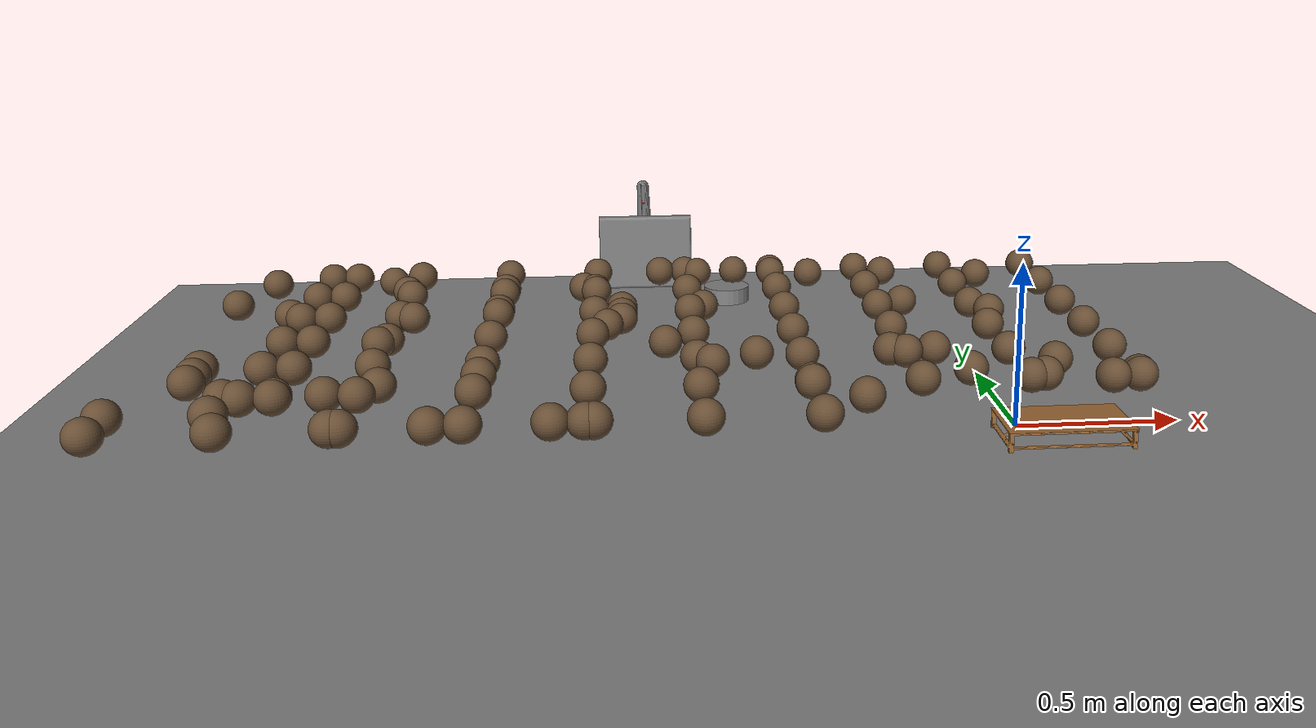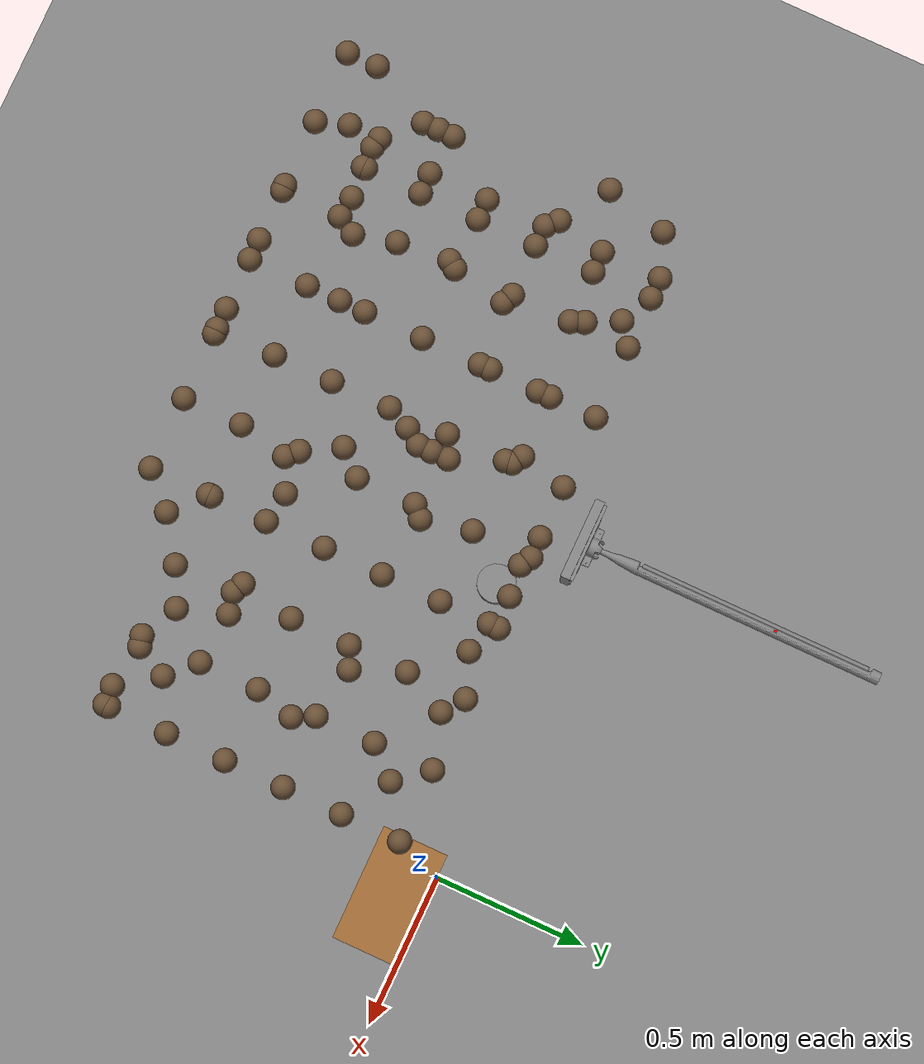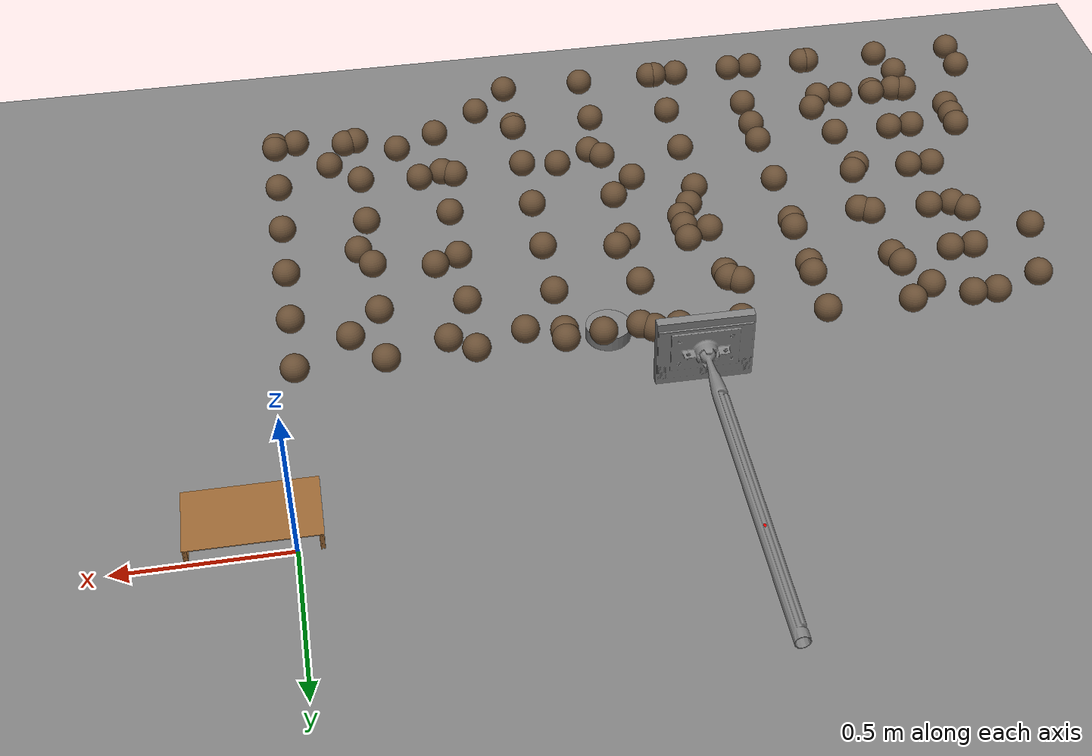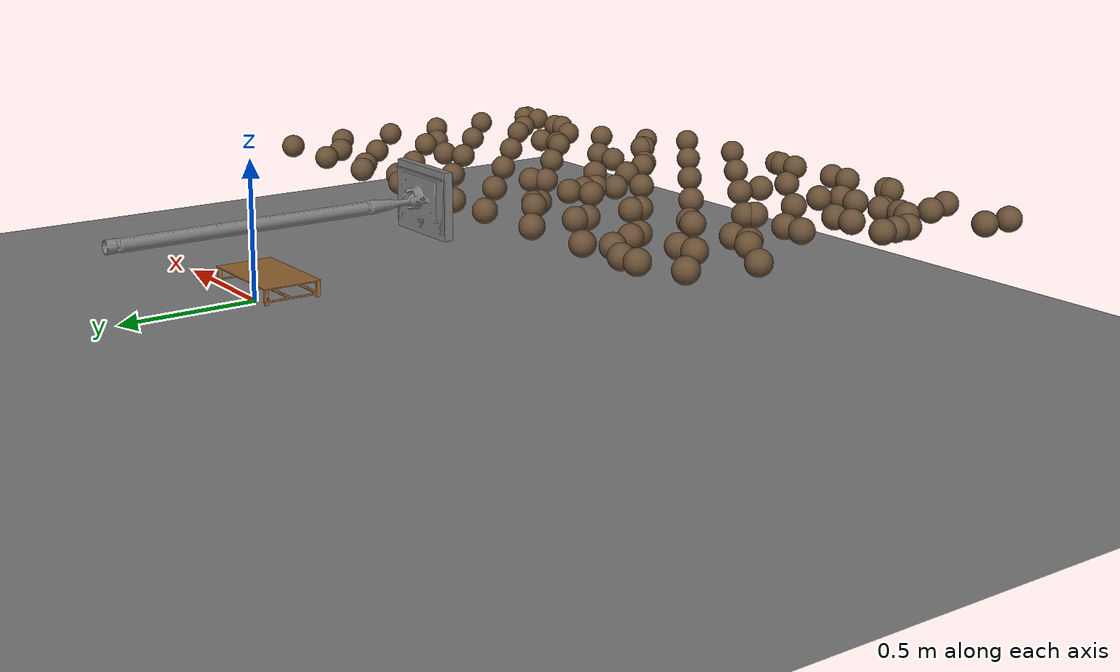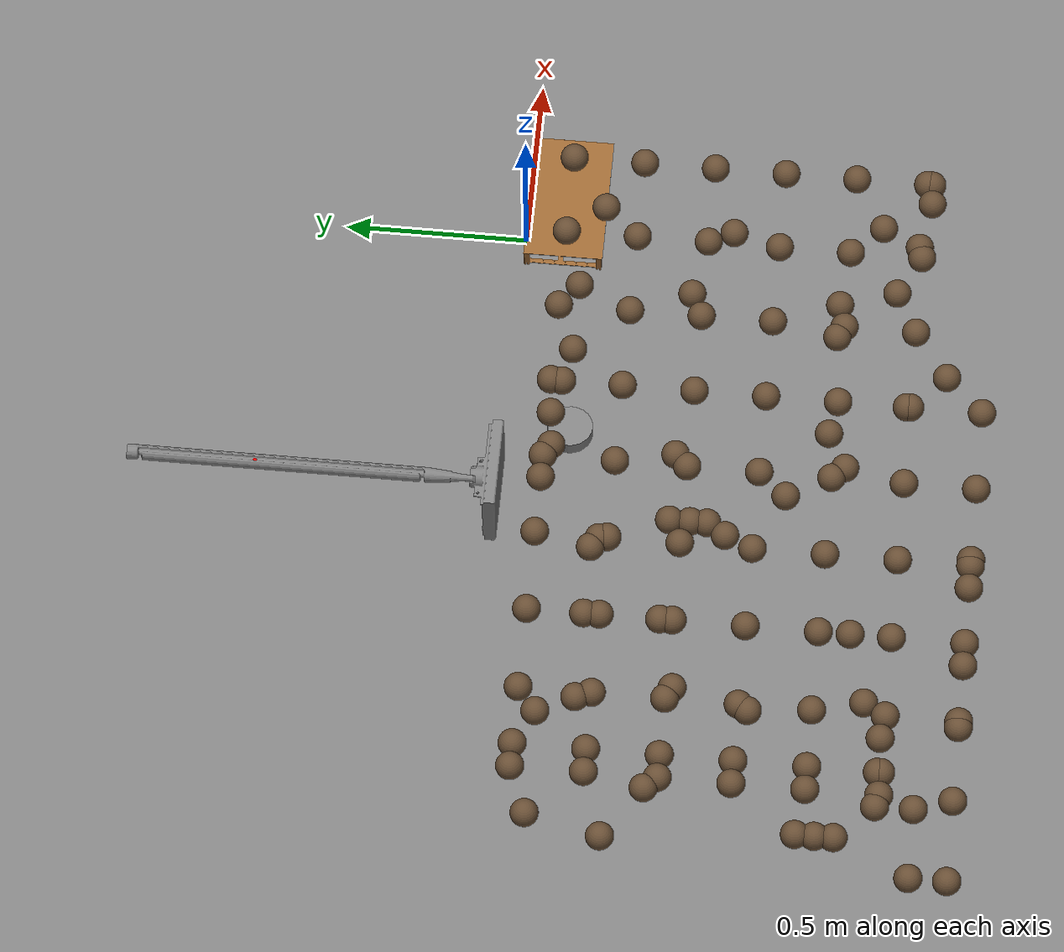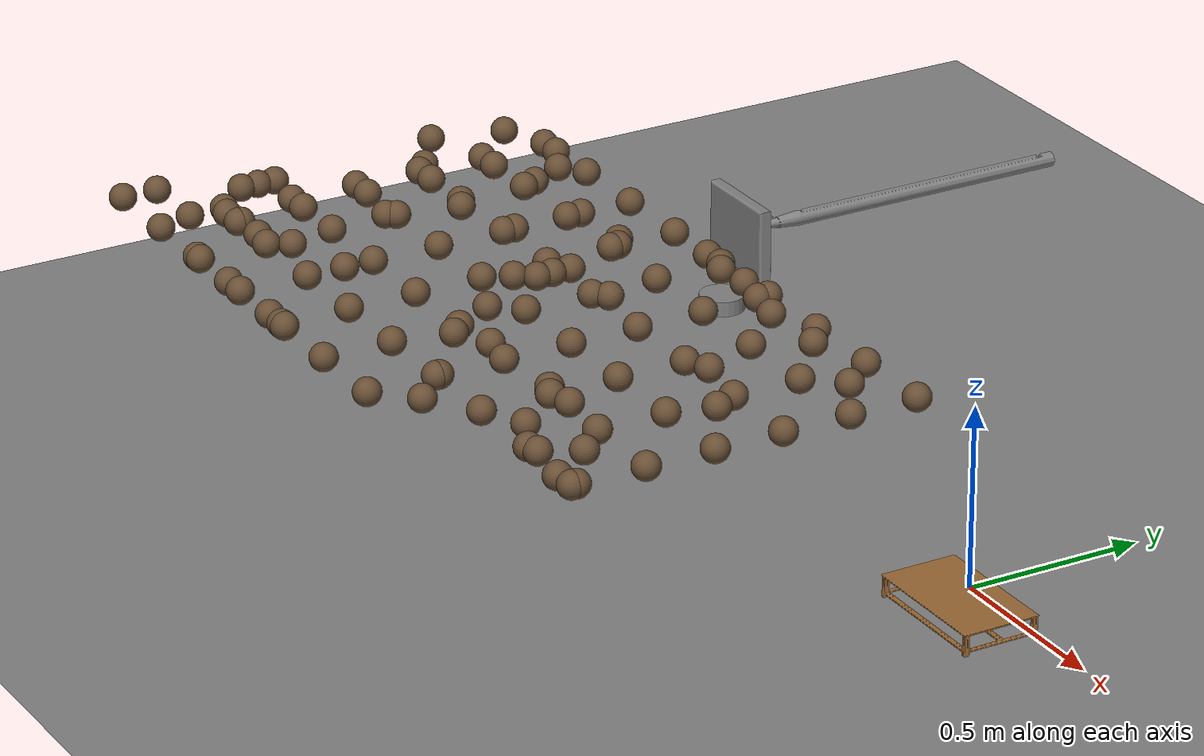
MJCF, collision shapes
<?xml version="1.0" encoding="UTF-8"?>
<mujoco model="ur5e_with_mop_and_dust">
  <compiler angle="radian" meshdir="assets" autolimits="true"/>
  <option integrator="implicitfast" timestep="0.01" viscosity="0.01"/>

  <!-- ================= DEFAULT SETTINGS ================= -->
  <default>
    <default class="ur5e">
      <default class="visual">
        <geom type="mesh" contype="0" conaffinity="0" group="2"/>
      </default>
      <default class="collision">
        <geom type="capsule" group="3"/>
        <default class="eef_collision">
          <geom type="cylinder"/>
        </default>
      </default>
      <joint axis="0 1 0" range="-6.28319 6.28319"/>
      <default class="joint_limited">
        <joint range="-3.1415 3.1415"/>
      </default>
      <default class="position">
        <position ctrlrange="-6.2831 6.2831" kp="2000" kv="100" forcerange="-150 150"/>
        <default class="position_limited">
          <position ctrlrange="-3.1415 3.1415"/>
        </default>
        <default class="position_small">
          <position kp="500" kv="25" forcerange="-28 28"/>
        </default>
      </default>
    </default>
    <!-- Improved dust particle physics for MuJoCo 3.3.5 -->
    <default class="dust">
      <geom type="sphere" size="0.008" density="600" friction="0.8 0.1 0.05" condim="3"
            contype="1" conaffinity="1" group="1"
            solref="0.02 1.0" solimp="0.9 0.95 0.001"/>
    </default>
  </default>

  <!-- ================= MATERIALS + MESHES ================= -->
  <asset>
    <material name="black" rgba="0.033 0.033 0.033 1"/>
    <material name="jointgray" rgba="0.278 0.278 0.278 1"/>
    <material name="linkgray" rgba="0.82 0.82 0.82 1"/>
    <material name="urblue" rgba="0.49 0.678 0.8 1"/>
    <material name="table_material" rgba="0.6 0.4 0.2 1"/>
    <material name="dust_material" rgba="0.4 0.3 0.2 0.8"/>

    <!-- Robot meshes -->
    <mesh file="base_0.obj"/>
    <mesh file="base_1.obj"/>
    <mesh file="shoulder_0.obj"/>
    <mesh file="shoulder_1.obj"/>
    <mesh file="shoulder_2.obj"/>
    <mesh file="upperarm_0.obj"/>
    <mesh file="upperarm_1.obj"/>
    <mesh file="upperarm_2.obj"/>
    <mesh file="upperarm_3.obj"/>
    <mesh file="forearm_0.obj"/>
    <mesh file="forearm_1.obj"/>
    <mesh file="forearm_2.obj"/>
    <mesh file="forearm_3.obj"/>
    <mesh file="wrist1_0.obj"/>
    <mesh file="wrist1_1.obj"/>
    <mesh file="wrist1_2.obj"/>
    <mesh file="wrist2_0.obj"/>
    <mesh file="wrist2_1.obj"/>
    <mesh file="wrist2_2.obj"/>
    <mesh file="wrist3.obj"/>

    <!-- Table and tool meshes -->
    <mesh file="test.stl" scale="0.28 0.29 0.1" name="table"/>
    <mesh name="base_mesh" file="mop_base.obj" scale="0.002 0.002 0.002"/>
    <mesh name="handle_mesh" file="mop_handle.obj" scale="0.002 0.002 0.002"/>
    <mesh name="dust_ball_mesh" file="simple_small_ball.stl" scale="0.005 0.005 0.005"/>
  </asset>

  <!-- ================= WORLD OBJECTS ================= -->
  <worldbody>
    <!-- Ground with proper contact properties -->
    <geom name="ground" type="plane" size="3 3 0.1" rgba="0.5 0.5 0.5 1" pos="0 0 0"
          solref="0.02 1.0" solimp="0.9 0.95 0.001" friction="0.9 0.1 0.05"/>

    <!-- Table positioned as base platform -->
    <body name="table" pos="0.3 0 0">
      <inertial mass="50" pos="0 0 0.05" diaginertia="10 10 5"/>
      <geom name="table_visual" type="mesh" mesh="table" material="table_material" class="visual"/>
      <geom name="table_collision" type="mesh" mesh="table"
            material="table_material" group="0" contype="1" conaffinity="1"
            solref="0.02 1.0" solimp="0.9 0.95 0.001" friction="0.7 0.1 0.05"/>
    </body>

    <!-- UR5e Robot mounted ON the table surface -->
    <body name="base" pos="-0.875 -0.2 0.5" quat="1 0 0 1" childclass="ur5e">
      <inertial mass="4" pos="0 0 0" diaginertia="0.0044 0.0044 0.0072"/>
      <geom mesh="base_0" material="black" class="visual"/>
      <geom mesh="base_1" material="jointgray" class="visual"/>
      <!-- Base collision geometry to sit on table -->
      <geom name="base_collision" type="cylinder" size="0.06 0.02" pos="0 0 -0.01"
            contype="1" conaffinity="1" group="3" friction="0.8 0.1 0.05"/>

      <body name="shoulder_link" pos="0 0 0.163">
        <inertial mass="3.7" pos="0 0 0" diaginertia="0.0102 0.0102 0.0066"/>
        <joint name="shoulder_pan" axis="0 0 1"/>
        <geom mesh="shoulder_0" material="urblue" class="visual"/>
        <geom mesh="shoulder_1" material="black" class="visual"/>
        <geom mesh="shoulder_2" material="jointgray" class="visual"/>

        <body name="upper_arm_link" pos="0 0.138 0" quat="1 0 1 0">
          <inertial mass="8.39" pos="0 0 0.2125" diaginertia="0.133 0.133 0.015"/>
          <joint name="shoulder_lift"/>
          <geom mesh="upperarm_0" material="linkgray" class="visual"/>
          <geom mesh="upperarm_1" material="black" class="visual"/>
          <geom mesh="upperarm_2" material="jointgray" class="visual"/>
          <geom mesh="upperarm_3" material="urblue" class="visual"/>

          <body name="forearm_link" pos="0 -0.131 0.425">
            <inertial mass="2.27" pos="0 0 0.196" diaginertia="0.031 0.031 0.004"/>
            <joint name="elbow" class="joint_limited"/>
            <geom mesh="forearm_0" material="urblue" class="visual"/>
            <geom mesh="forearm_1" material="linkgray" class="visual"/>
            <geom mesh="forearm_2" material="black" class="visual"/>
            <geom mesh="forearm_3" material="jointgray" class="visual"/>

            <body name="wrist_1_link" pos="0 0 0.392" quat="1 0 1 0">
              <inertial mass="1.219" pos="0 0.127 0" diaginertia="0.0025 0.0025 0.0021"/>
              <joint name="wrist_1"/>
              <geom mesh="wrist1_0" material="black" class="visual"/>
              <geom mesh="wrist1_1" material="urblue" class="visual"/>
              <geom mesh="wrist1_2" material="jointgray" class="visual"/>

              <body name="wrist_2_link" pos="0 0.127 0">
                <inertial mass="1.219" pos="0 0 0.1" diaginertia="0.0025 0.0025 0.0021"/>
                <joint name="wrist_2" axis="0 0 1"/>
                <geom mesh="wrist2_0" material="black" class="visual"/>
                <geom mesh="wrist2_1" material="urblue" class="visual"/>
                <geom mesh="wrist2_2" material="jointgray" class="visual"/>

                <body name="wrist_3_link" pos="0 0 0.1">
                  <inertial mass="0.188" pos="0 0.077 0" diaginertia="0.00013 0.0001 0.0001"/>
                  <joint name="wrist_3"/>
                  <geom mesh="wrist3" material="linkgray" class="visual"/>
                  <site name="ee_site" pos="0 0.08 0" size="0.01" rgba="1 0 0 1"/>

                  <!-- Mop tool attachment -->
                  <body name="mop_mount" pos="0 0.08 0" quat="1 0 0 1">
                    <body name="mop_tool" pos="0 -0.6 0">
                      <inertial mass="0.5" pos="0 0 0" diaginertia="0.01 0.01 0.01"/>
                      <geom type="mesh" mesh="handle_mesh" density="500" friction="0.8 0.1 0.1"/>

                      <body name="mop_head_y">
                        <joint name="mop_socket_y" type="hinge" axis="0 1 0" damping="0.5"
                              limited="true" range="-1.57079633 1.57079633"/>

                        <body name="mop_head_x">
                          <joint name="mop_socket_x" type="hinge" axis="1 0 0" damping="0.5"
                                limited="true" range="-1.57079633 1.57079633"/>

                          <inertial mass="0.2" pos="0 -0.05 -0.1" diaginertia="0.005 0.005 0.005"/>
                          <geom type="mesh" mesh="base_mesh" density="500" friction="0.8 0.1 0.1"
                                pos="0 -0.05 -0.1"/>
                        </body>
                      </body>
                    </body>
                  </body>
                </body>
              </body>
            </body>
          </body>
        </body>
      </body>
    </body>

    <!-- Dust particles properly positioned on table surface around the robot -->
    <!-- Distributed in a cleaning area away from robot base -->
          <!-- Dust balls (stable with solver parameters) -->

      <!-- Dust particles - stable until mop pushes them -->
    <body name="dust_1" pos="-1.2340 -0.6502 0.5">
      <freejoint/>
      <inertial mass="0.03" diaginertia="2e-5 2e-5 2e-5" pos="0 0 0"/>
      <geom name="d1" type="mesh" mesh="dust_ball_mesh" material="dust_material" class="dust"/>
    </body>

    <body name="dust_2" pos="-0.5004 -0.503 0.5">
      <freejoint/>
      <inertial mass="0.03" diaginertia="2e-5 2e-5 2e-5" pos="0 0 0"/>
      <geom name="d2" type="mesh" mesh="dust_ball_mesh" material="dust_material" class="dust"/>
    </body>

    <body name="dust_3" pos="-2.1001 -1.0000 0.5">
      <freejoint/>
      <inertial mass="0.03" diaginertia="2e-5 2e-5 2e-5" pos="0 0 0"/>
      <geom name="d3" type="mesh" mesh="dust_ball_mesh" material="dust_material" class="dust"/>
    </body>

    <body name="dust_4" pos="-0.3000 -0.600 0.5">
      <freejoint/>
      <inertial mass="0.03" diaginertia="2e-5 2e-5 2e-5" pos="0 0 0"/>
      <geom name="d4" type="mesh" mesh="dust_ball_mesh" material="dust_material" class="dust"/>
    </body>

    <body name="dust_5" pos="-1.8000 -0.2000 0.5">
      <freejoint/>
      <inertial mass="0.03" diaginertia="2e-5 2e-5 2e-5" pos="0 0 0"/>
      <geom name="d5" type="mesh" mesh="dust_ball_mesh" material="dust_material" class="dust"/>
    </body>

    <body name="dust_6" pos="-2.0000 -0.5000 0.5">
      <freejoint/>
      <inertial mass="0.03" diaginertia="2e-5 2e-5 2e-5" pos="0 0 0"/>
      <geom name="d6" type="mesh" mesh="dust_ball_mesh" material="dust_material" class="dust"/>
    </body>

    <body name="dust_7" pos="-0.7000 -1.2000 0.5">
      <freejoint/>
      <inertial mass="0.03" diaginertia="2e-5 2e-5 2e-5" pos="0 0 0"/>
      <geom name="d7" type="mesh" mesh="dust_ball_mesh" material="dust_material" class="dust"/>
    </body>

    <body name="dust_8" pos="-1.5000 -0.500 0.5">
      <freejoint/>
      <inertial mass="0.03" diaginertia="2e-5 2e-5 2e-5" pos="0 0 0"/>
      <geom name="d8" type="mesh" mesh="dust_ball_mesh" material="dust_material" class="dust"/>
    </body>

    <body name="dust_9" pos="-1.7500 -0.3000 0.5">
      <freejoint/>
      <inertial mass="0.03" diaginertia="2e-5 2e-5 2e-5" pos="0 0 0"/>
      <geom name="d9" type="mesh" mesh="dust_ball_mesh" material="dust_material" class="dust"/>
    </body>

    <body name="dust_10" pos="-0.9000 -0.900 0.5">
      <freejoint/>
      <inertial mass="0.03" diaginertia="2e-5 2e-5 2e-5" pos="0 0 0"/>
      <geom name="d10" type="mesh" mesh="dust_ball_mesh" material="dust_material" class="dust"/>
    </body>

    <body name="dust_11" pos="-1.0000 -0.5000 0.5">
      <freejoint/>
      <inertial mass="0.03" diaginertia="2e-5 2e-5 2e-5" pos="0 0 0"/>
      <geom name="d11" type="mesh" mesh="dust_ball_mesh" material="dust_material" class="dust"/>
    </body>

    <body name="dust_12" pos="-1.700 -1.0500 0.5">
      <freejoint/>
      <inertial mass="0.03" diaginertia="2e-5 2e-5 2e-5" pos="0 0 0"/>
      <geom name="d12" type="mesh" mesh="dust_ball_mesh" material="dust_material" class="dust"/>
    </body>

    <body name="dust_13" pos="-1.7500 -0.7500 0.5">
      <freejoint/>
      <inertial mass="0.03" diaginertia="2e-5 2e-5 2e-5" pos="0 0 0"/>
      <geom name="d13" type="mesh" mesh="dust_ball_mesh" material="dust_material" class="dust"/>
    </body>

    <body name="dust_14" pos="-0.2500 -0.2500 0.5">
      <freejoint/>
      <inertial mass="0.03" diaginertia="2e-5 2e-5 2e-5" pos="0 0 0"/>
      <geom name="d14" type="mesh" mesh="dust_ball_mesh" material="dust_material" class="dust"/>
    </body>

    <body name="dust_15" pos="-1.1000 -0.1500 0.5">
      <freejoint/>
      <inertial mass="0.03" diaginertia="2e-5 2e-5 2e-5" pos="0 0 0"/>
      <geom name="d15" type="mesh" mesh="dust_ball_mesh" material="dust_material" class="dust"/>
    </body>

    <body name="dust_16" pos="-1.2700 -0.3200 0.5">
      <freejoint/>
      <inertial mass="0.03" diaginertia="2e-5 2e-5 2e-5" pos="0 0 0"/>
      <geom name="d16" type="mesh" mesh="dust_ball_mesh" material="dust_material" class="dust"/>
    </body>

    <body name="dust_17" pos="-0.1608 -1.1246 0.5">
      <freejoint/>
      <inertial mass="0.03" diaginertia="2e-5 2e-5 2e-5" pos="0 0 0"/>
      <geom name="d17" type="mesh" mesh="dust_ball_mesh" material="dust_material" class="dust"/>
    </body>

    <body name="dust_18" pos="-1.5000 -1.0000 0.5">
      <freejoint/>
      <inertial mass="0.03" diaginertia="2e-5 2e-5 2e-5" pos="0 0 0"/>
      <geom name="d18" type="mesh" mesh="dust_ball_mesh" material="dust_material" class="dust"/>
    </body>

    <body name="dust_19" pos="-0.7008 -0.2003 0.5">
      <freejoint/>
      <inertial mass="0.03" diaginertia="2e-5 2e-5 2e-5" pos="0 0 0"/>
      <geom name="d19" type="mesh" mesh="dust_ball_mesh" material="dust_material" class="dust"/>
    </body>

    <body name="dust_20" pos="-2.1008 -0.9502 0.5">
      <freejoint/>
      <inertial mass="0.03" diaginertia="2e-5 2e-5 2e-5" pos="0 0 0"/>
      <geom name="d20" type="mesh" mesh="dust_ball_mesh" material="dust_material" class="dust"/>
    </body>

    <body name="dust_21" pos="-1.2000 -0.5000 0.5">
      <freejoint/>
      <inertial mass="0.03" diaginertia="2e-5 2e-5 2e-5" pos="0 0 0"/>
      <geom name="d21" type="mesh" mesh="dust_ball_mesh" material="dust_material" class="dust"/>
    </body>

    <body name="dust_22" pos="-0.4500 -1.0500 0.5">
      <freejoint/>
      <inertial mass="0.03" diaginertia="2e-5 2e-5 2e-5" pos="0 0 0"/>
      <geom name="d22" type="mesh" mesh="dust_ball_mesh" material="dust_material" class="dust"/>
    </body>

    <body name="dust_23" pos="-2.0000 -1.2000 0.5">
      <freejoint/>
      <inertial mass="0.03" diaginertia="2e-5 2e-5 2e-5" pos="0 0 0"/>
      <geom name="d23" type="mesh" mesh="dust_ball_mesh" material="dust_material" class="dust"/>
    </body>

    <body name="dust_24" pos="-0.1008 -1.1200 0.5">
      <freejoint/>
      <inertial mass="0.03" diaginertia="2e-5 2e-5 2e-5" pos="0 0 0"/>
      <geom name="d24" type="mesh" mesh="dust_ball_mesh" material="dust_material" class="dust"/>
    </body>

    <body name="dust_25" pos="-1.9000 -1.1000 0.5">
      <freejoint/>
      <inertial mass="0.03" diaginertia="2e-5 2e-5 2e-5" pos="0 0 0"/>
      <geom name="d25" type="mesh" mesh="dust_ball_mesh" material="dust_material" class="dust"/>
    </body>

    <body name="dust_26" pos="-0.2500 -1.0000 0.5">
      <freejoint/>
      <inertial mass="0.03" diaginertia="2e-5 2e-5 2e-5" pos="0 0 0"/>
      <geom name="d26" type="mesh" mesh="dust_ball_mesh" material="dust_material" class="dust"/>
    </body>

    <body name="dust_27" pos="-0.8000 -1.1000 0.5">
      <freejoint/>
      <inertial mass="0.03" diaginertia="2e-5 2e-5 2e-5" pos="0 0 0"/>
      <geom name="d27" type="mesh" mesh="dust_ball_mesh" material="dust_material" class="dust"/>
    </body>

    <body name="dust_28" pos="-1.3000 -0.3000 0.5">
      <freejoint/>
      <inertial mass="0.03" diaginertia="2e-5 2e-5 2e-5" pos="0 0 0"/>
      <geom name="d28" type="mesh" mesh="dust_ball_mesh" material="dust_material" class="dust"/>
    </body>

    <body name="dust_29" pos="-2.1500 -0.4000 0.5">
      <freejoint/>
      <inertial mass="0.03" diaginertia="2e-5 2e-5 2e-5" pos="0 0 0"/>
      <geom name="d29" type="mesh" mesh="dust_ball_mesh" material="dust_material" class="dust"/>
    </body>

    <body name="dust_30" pos="-1.0000 -0.1690 0.5">
      <freejoint/>
      <inertial mass="0.03" diaginertia="2e-5 2e-5 2e-5" pos="0 0 0"/>
      <geom name="d30" type="mesh" mesh="dust_ball_mesh" material="dust_material" class="dust"/>
    </body>

    <body name="dust_31" pos="-1.1000 -0.8000 0.5">
      <freejoint/>
      <inertial mass="0.03" diaginertia="2e-5 2e-5 2e-5" pos="0 0 0"/>
      <geom name="d31" type="mesh" mesh="dust_ball_mesh" material="dust_material" class="dust"/>
    </body>

    <body name="dust_32" pos="-2.0008 -1.1000 0.5">
      <freejoint/>
      <inertial mass="0.03" diaginertia="2e-5 2e-5 2e-5" pos="0 0 0"/>
      <geom name="d32" type="mesh" mesh="dust_ball_mesh" material="dust_material" class="dust"/>
    </body>

    <body name="dust_33" pos="-1.2000 -0.500 0.5">
      <freejoint/>
      <inertial mass="0.03" diaginertia="2e-5 2e-5 2e-5" pos="0 0 0"/>
      <geom name="d33" type="mesh" mesh="dust_ball_mesh" material="dust_material" class="dust"/>
    </body>

    <body name="dust_34" pos="-1.7000 -0.5500 0.5">
      <freejoint/>
      <inertial mass="0.03" diaginertia="2e-5 2e-5 2e-5" pos="0 0 0"/>
      <geom name="d34" type="mesh" mesh="dust_ball_mesh" material="dust_material" class="dust"/>
    </body>

    <body name="dust_35" pos="-2.1000 -0.2000 0.5">
      <freejoint/>
      <inertial mass="0.03" diaginertia="2e-5 2e-5 2e-5" pos="0 0 0"/>
      <geom name="d35" type="mesh" mesh="dust_ball_mesh" material="dust_material" class="dust"/>
    </body>

    <body name="dust_36" pos="-0.6000 -0.9000  0.5">
      <freejoint/>
      <inertial mass="0.03" diaginertia="2e-5 2e-5 2e-5" pos="0 0 0"/>
      <geom name="d36" type="mesh" mesh="dust_ball_mesh" material="dust_material" class="dust"/>
    </body>

    <body name="dust_37" pos="-2.2000 -1.2000 0.5">
      <freejoint/>
      <inertial mass="0.03" diaginertia="2e-5 2e-5 2e-5" pos="0 0 0"/>
      <geom name="d37" type="mesh" mesh="dust_ball_mesh" material="dust_material" class="dust"/>
    </body>

    <body name="dust_38" pos="-2.1000 -0.900 0.5">
      <freejoint/>
      <inertial mass="0.03" diaginertia="2e-5 2e-5 2e-5" pos="0 0 0"/>
      <geom name="d38" type="mesh" mesh="dust_ball_mesh" material="dust_material" class="dust"/>
    </body>

    <body name="dust_39" pos="-1.5000 -0.3000 0.5">
      <freejoint/>
      <inertial mass="0.03" diaginertia="2e-5 2e-5 2e-5" pos="0 0 0"/>
      <geom name="d39" type="mesh" mesh="dust_ball_mesh" material="dust_material" class="dust"/>
    </body>

    <body name="dust_40" pos="-0.9008 -0.1590 0.5">
      <freejoint/>
      <inertial mass="0.03" diaginertia="2e-5 2e-5 2e-5" pos="0 0 0"/>
      <geom name="d40" type="mesh" mesh="dust_ball_mesh" material="dust_material" class="dust"/>
    </body>

    <body name="dust_41" pos="-1.2500 -1.3000 0.5">
      <freejoint/>
      <inertial mass="0.03" diaginertia="2e-5 2e-5 2e-5" pos="0 0 0"/>
      <geom name="d41" type="mesh" mesh="dust_ball_mesh" material="dust_material" class="dust"/>
    </body>

    <body name="dust_42" pos="-1.0008 -0.9500 0.5">
      <freejoint/>
      <inertial mass="0.03" diaginertia="2e-5 2e-5 2e-5" pos="0 0 0"/>
      <geom name="d42" type="mesh" mesh="dust_ball_mesh" material="dust_material" class="dust"/>
    </body>

    <body name="dust_43" pos="-0.3008 -1.1000 0.5">
      <freejoint/>
      <inertial mass="0.03" diaginertia="2e-5 2e-5 2e-5" pos="0 0 0"/>
      <geom name="d43" type="mesh" mesh="dust_ball_mesh" material="dust_material" class="dust"/>
    </body>

    <body name="dust_44" pos="-2.0000 -0.5000 0.5">
      <freejoint/>
      <inertial mass="0.03" diaginertia="2e-5 2e-5 2e-5" pos="0 0 0"/>
      <geom name="d44" type="mesh" mesh="dust_ball_mesh" material="dust_material" class="dust"/>
    </body>

    <body name="dust_45" pos="-1.2000 -0.555 0.5">
      <freejoint/>
      <inertial mass="0.03" diaginertia="2e-5 2e-5 2e-5" pos="0 0 0"/>
      <geom name="d45" type="mesh" mesh="dust_ball_mesh" material="dust_material" class="dust"/>
    </body>

    <body name="dust_46" pos="-0.5000 -0.9000 0.5">
      <freejoint/>
      <inertial mass="0.03" diaginertia="2e-5 2e-5 2e-5" pos="0 0 0"/>
      <geom name="d46" type="mesh" mesh="dust_ball_mesh" material="dust_material" class="dust"/>
    </body>

    <body name="dust_47" pos="-1.2000 -0.6000 0.5">
      <freejoint/>
      <inertial mass="0.03" diaginertia="2e-5 2e-5 2e-5" pos="0 0 0"/>
      <geom name="d47" type="mesh" mesh="dust_ball_mesh" material="dust_material" class="dust"/>
    </body>

    <body name="dust_48" pos="-0.8008 -0.1800 0.5">
      <freejoint/>
      <inertial mass="0.03" diaginertia="2e-5 2e-5 2e-5" pos="0 0 0"/>
      <geom name="d48" type="mesh" mesh="dust_ball_mesh" material="dust_material" class="dust"/>
    </body>

    <body name="dust_49" pos="-1.8000 -1.1000 0.5">
      <freejoint/>
      <inertial mass="0.03" diaginertia="2e-5 2e-5 2e-5" pos="0 0 0"/>
      <geom name="d49" type="mesh" mesh="dust_ball_mesh" material="dust_material" class="dust"/>
    </body>

    <body name="dust_50" pos="-0.500 -0.2000 0.5">
      <freejoint/>
      <inertial mass="0.03" diaginertia="2e-5 2e-5 2e-5" pos="0 0 0"/>
      <geom name="d50" type="mesh" mesh="dust_ball_mesh" material="dust_material" class="dust"/>
    </body>

    <body name="dust_51" pos="-2.2000 -1.3000 0.5">
      <freejoint/>
      <inertial mass="0.03" diaginertia="2e-5 2e-5 2e-5" pos="0 0 0"/>
      <geom name="d51" type="mesh" mesh="dust_ball_mesh" material="dust_material" class="dust"/>
    </body>

    <body name="dust_52" pos="-1.9000 -1.1083 0.5">
      <freejoint/>
      <inertial mass="0.03" diaginertia="2e-5 2e-5 2e-5" pos="0 0 0"/>
      <geom name="d52" type="mesh" mesh="dust_ball_mesh" material="dust_material" class="dust"/>
    </body>

    <body name="dust_53" pos="-1.9000  -0.9167 0.5">
      <freejoint/>
      <inertial mass="0.03" diaginertia="2e-5 2e-5 2e-5" pos="0 0 0"/>
      <geom name="d53" type="mesh" mesh="dust_ball_mesh" material="dust_material" class="dust"/>
    </body>

    <body name="dust_54" pos="-1.9000  -0.7250 0.5">
      <freejoint/>
      <inertial mass="0.03" diaginertia="2e-5 2e-5 2e-5" pos="0 0 0"/>
      <geom name="d54" type="mesh" mesh="dust_ball_mesh" material="dust_material" class="dust"/>
    </body>

    <body name="dust_55" pos="-1.9000 -0.5333 0.5">
      <freejoint/>
      <inertial mass="0.03" diaginertia="2e-5 2e-5 2e-5" pos="0 0 0"/>
      <geom name="d55" type="mesh" mesh="dust_ball_mesh" material="dust_material" class="dust"/>
    </body>

    <body name="dust_56" pos="-1.9000 -0.3417 0.5">
      <freejoint/>
      <inertial mass="0.03" diaginertia="2e-5 2e-5 2e-5" pos="0 0 0"/>
      <geom name="d56" type="mesh" mesh="dust_ball_mesh" material="dust_material" class="dust"/>
    </body>

    <body name="dust_57" pos="-1.9000  -0.1500 0.5">
      <freejoint/>
      <inertial mass="0.03" diaginertia="2e-5 2e-5 2e-5" pos="0 0 0"/>
      <geom name="d57" type="mesh" mesh="dust_ball_mesh" material="dust_material" class="dust"/>
    </body>

    <body name="dust_58" pos="-1.9667 -1.3000 0.5">
      <freejoint/>
      <inertial mass="0.03" diaginertia="2e-5 2e-5 2e-5" pos="0 0 0"/>
      <geom name="d58" type="mesh" mesh="dust_ball_mesh" material="dust_material" class="dust"/>
    </body>

    <body name="dust_59" pos="-1.9667 -1.1083 0.5">
      <freejoint/>
      <inertial mass="0.03" diaginertia="2e-5 2e-5 2e-5" pos="0 0 0"/>
      <geom name="d59" type="mesh" mesh="dust_ball_mesh" material="dust_material" class="dust"/>
    </body>

    <body name="dust_60" pos="-1.9667 -0.9167 0.5">
      <freejoint/>
      <inertial mass="0.03" diaginertia="2e-5 2e-5 2e-5" pos="0 0 0"/>
      <geom name="d60" type="mesh" mesh="dust_ball_mesh" material="dust_material" class="dust"/>
    </body>

    <body name="dust_61" pos="-1.9667 -0.7250 0.5">
      <freejoint/>
      <inertial mass="0.03" diaginertia="2e-5 2e-5 2e-5" pos="0 0 0"/>
      <geom name="d61" type="mesh" mesh="dust_ball_mesh" material="dust_material" class="dust"/>
    </body>

    <body name="dust_62" pos="-1.9667 -0.5333 0.5">
      <freejoint/>
      <inertial mass="0.03" diaginertia="2e-5 2e-5 2e-5" pos="0 0 0"/>
      <geom name="d62" type="mesh" mesh="dust_ball_mesh" material="dust_material" class="dust"/>
    </body>

    <body name="dust_63" pos="-1.9667 -0.3417 0.5">
      <freejoint/>
      <inertial mass="0.03" diaginertia="2e-5 2e-5 2e-5" pos="0 0 0"/>
      <geom name="d63" type="mesh" mesh="dust_ball_mesh" material="dust_material" class="dust"/>
    </body>

    <body name="dust_64" pos="-1.9667 -0.1500 0.5">
      <freejoint/>
      <inertial mass="0.03" diaginertia="2e-5 2e-5 2e-5" pos="0 0 0"/>
      <geom name="d64" type="mesh" mesh="dust_ball_mesh" material="dust_material" class="dust"/>
    </body>

    <body name="dust_65" pos="-1.7333 -1.3000 0.5">
      <freejoint/>
      <inertial mass="0.03" diaginertia="2e-5 2e-5 2e-5" pos="0 0 0"/>
      <geom name="d65" type="mesh" mesh="dust_ball_mesh" material="dust_material" class="dust"/>
    </body>

    <body name="dust_66" pos="-1.7333 -1.1083 0.5">
      <freejoint/>
      <inertial mass="0.03" diaginertia="2e-5 2e-5 2e-5" pos="0 0 0"/>
      <geom name="d66" type="mesh" mesh="dust_ball_mesh" material="dust_material" class="dust"/>
    </body>

    <body name="dust_67" pos="-1.7333 -0.9167 0.5">
      <freejoint/>
      <inertial mass="0.03" diaginertia="2e-5 2e-5 2e-5" pos="0 0 0"/>
      <geom name="d67" type="mesh" mesh="dust_ball_mesh" material="dust_material" class="dust"/>
    </body>

    <body name="dust_68" pos="-1.7333 -0.7250 0.5">
      <freejoint/>
      <inertial mass="0.03" diaginertia="2e-5 2e-5 2e-5" pos="0 0 0"/>
      <geom name="d68" type="mesh" mesh="dust_ball_mesh" material="dust_material" class="dust"/>
    </body>

    <body name="dust_69" pos="-1.7333 -0.5333 0.5">
      <freejoint/>
      <inertial mass="0.03" diaginertia="2e-5 2e-5 2e-5" pos="0 0 0"/>
      <geom name="d69" type="mesh" mesh="dust_ball_mesh" material="dust_material" class="dust"/>
    </body>

    <body name="dust_70" pos="-1.7333 -0.3417 0.5">
      <freejoint/>
      <inertial mass="0.03" diaginertia="2e-5 2e-5 2e-5" pos="0 0 0"/>
      <geom name="d70" type="mesh" mesh="dust_ball_mesh" material="dust_material" class="dust"/>
    </body>

    <body name="dust_71" pos="-1.7333 -0.1500 0.5">
      <freejoint/>
      <inertial mass="0.03" diaginertia="2e-5 2e-5 2e-5" pos="0 0 0"/>
      <geom name="d71" type="mesh" mesh="dust_ball_mesh" material="dust_material" class="dust"/>
    </body>

    <body name="dust_72" pos="-1.5000 -1.3000 0.5">
      <freejoint/>
      <inertial mass="0.03" diaginertia="2e-5 2e-5 2e-5" pos="0 0 0"/>
      <geom name="d72" type="mesh" mesh="dust_ball_mesh" material="dust_material" class="dust"/>
    </body>

    <body name="dust_73" pos="-1.5000 -1.1083 0.5">
      <freejoint/>
      <inertial mass="0.03" diaginertia="2e-5 2e-5 2e-5" pos="0 0 0"/>
      <geom name="d73" type="mesh" mesh="dust_ball_mesh" material="dust_material" class="dust"/>
    </body>

    <body name="dust_74" pos="-1.5000 -0.9167 0.5">
      <freejoint/>
      <inertial mass="0.03" diaginertia="2e-5 2e-5 2e-5" pos="0 0 0"/>
      <geom name="d74" type="mesh" mesh="dust_ball_mesh" material="dust_material" class="dust"/>
    </body>

    <body name="dust_75" pos="-1.5000 -0.7250 0.5">
      <freejoint/>
      <inertial mass="0.03" diaginertia="2e-5 2e-5 2e-5" pos="0 0 0"/>
      <geom name="d75" type="mesh" mesh="dust_ball_mesh" material="dust_material" class="dust"/>
    </body>

    <body name="dust_76" pos="-1.5000 -0.5333 0.5">
      <freejoint/>
      <inertial mass="0.03" diaginertia="2e-5 2e-5 2e-5" pos="0 0 0"/>
      <geom name="d76" type="mesh" mesh="dust_ball_mesh" material="dust_material" class="dust"/>
    </body>

    <body name="dust_77" pos="-1.5000 -0.3417 0.5">
      <freejoint/>
      <inertial mass="0.03" diaginertia="2e-5 2e-5 2e-5" pos="0 0 0"/>
      <geom name="d77" type="mesh" mesh="dust_ball_mesh" material="dust_material" class="dust"/>
    </body>

    <body name="dust_78" pos="-1.5000 -0.1500 0.5">
      <freejoint/>
      <inertial mass="0.03" diaginertia="2e-5 2e-5 2e-5" pos="0 0 0"/>
      <geom name="d78" type="mesh" mesh="dust_ball_mesh" material="dust_material" class="dust"/>
    </body>

    <body name="dust_79" pos="-1.2667 -1.3000 0.5">
      <freejoint/>
      <inertial mass="0.03" diaginertia="2e-5 2e-5 2e-5" pos="0 0 0"/>
      <geom name="d79" type="mesh" mesh="dust_ball_mesh" material="dust_material" class="dust"/>
    </body>

    <body name="dust_80" pos="-1.2667 -1.1083 0.5">
      <freejoint/>
      <inertial mass="0.03" diaginertia="2e-5 2e-5 2e-5" pos="0 0 0"/>
      <geom name="d80" type="mesh" mesh="dust_ball_mesh" material="dust_material" class="dust"/>
    </body>

    <body name="dust_81" pos="-1.2667 -0.9167 0.5">
      <freejoint/>
      <inertial mass="0.03" diaginertia="2e-5 2e-5 2e-5" pos="0 0 0"/>
      <geom name="d81" type="mesh" mesh="dust_ball_mesh" material="dust_material" class="dust"/>
    </body>

    <body name="dust_82" pos="-1.2667 -0.7250 0.5">
      <freejoint/>
      <inertial mass="0.03" diaginertia="2e-5 2e-5 2e-5" pos="0 0 0"/>
      <geom name="d82" type="mesh" mesh="dust_ball_mesh" material="dust_material" class="dust"/>
    </body>

    <body name="dust_83" pos="-1.2667 -0.5333 0.5">
      <freejoint/>
      <inertial mass="0.03" diaginertia="2e-5 2e-5 2e-5" pos="0 0 0"/>
      <geom name="d83" type="mesh" mesh="dust_ball_mesh" material="dust_material" class="dust"/>
    </body>

    <body name="dust_84" pos="-1.2667 -0.3417 0.5">
      <freejoint/>
      <inertial mass="0.03" diaginertia="2e-5 2e-5 2e-5" pos="0 0 0"/>
      <geom name="d84" type="mesh" mesh="dust_ball_mesh" material="dust_material" class="dust"/>
    </body>

    <body name="dust_85" pos="-1.2667 -0.1500 0.5">
      <freejoint/>
      <inertial mass="0.03" diaginertia="2e-5 2e-5 2e-5" pos="0 0 0"/>
      <geom name="d85" type="mesh" mesh="dust_ball_mesh" material="dust_material" class="dust"/>
    </body>

    <body name="dust_86" pos="-1.0333 -1.3000 0.5">
      <freejoint/>
      <inertial mass="0.03" diaginertia="2e-5 2e-5 2e-5" pos="0 0 0"/>
      <geom name="d86" type="mesh" mesh="dust_ball_mesh" material="dust_material" class="dust"/>
    </body>

    <body name="dust_87" pos="-1.0333 -1.1083 0.5">
      <freejoint/>
      <inertial mass="0.03" diaginertia="2e-5 2e-5 2e-5" pos="0 0 0"/>
      <geom name="d87" type="mesh" mesh="dust_ball_mesh" material="dust_material" class="dust"/>
    </body>

    <body name="dust_88" pos="-1.0333 -0.9167 0.5">
      <freejoint/>
      <inertial mass="0.03" diaginertia="2e-5 2e-5 2e-5" pos="0 0 0"/>
      <geom name="d88" type="mesh" mesh="dust_ball_mesh" material="dust_material" class="dust"/>
    </body>

    <body name="dust_89" pos="-1.0333 -0.7250 0.5">
      <freejoint/>
      <inertial mass="0.03" diaginertia="2e-5 2e-5 2e-5" pos="0 0 0"/>
      <geom name="d89" type="mesh" mesh="dust_ball_mesh" material="dust_material" class="dust"/>
    </body>

    <body name="dust_90" pos="-1.0333 -0.5333 0.5">
      <freejoint/>
      <inertial mass="0.03" diaginertia="2e-5 2e-5 2e-5" pos="0 0 0"/>
      <geom name="d90" type="mesh" mesh="dust_ball_mesh" material="dust_material" class="dust"/>
    </body>

    <body name="dust_91" pos="-1.0333 -0.3417 0.5">
      <freejoint/>
      <inertial mass="0.03" diaginertia="2e-5 2e-5 2e-5" pos="0 0 0"/>
      <geom name="d91" type="mesh" mesh="dust_ball_mesh" material="dust_material" class="dust"/>
    </body>

    <body name="dust_92" pos="-1.0333 -0.1500 0.5">
      <freejoint/>
      <inertial mass="0.03" diaginertia="2e-5 2e-5 2e-5" pos="0 0 0"/>
      <geom name="d92" type="mesh" mesh="dust_ball_mesh" material="dust_material" class="dust"/>
    </body>

    <body name="dust_93" pos="-0.8000 -1.3000 0.5">
      <freejoint/>
      <inertial mass="0.03" diaginertia="2e-5 2e-5 2e-5" pos="0 0 0"/>
      <geom name="d93" type="mesh" mesh="dust_ball_mesh" material="dust_material" class="dust"/>
    </body>

    <body name="dust_94" pos="-0.8000 -1.1083 0.5">
      <freejoint/>
      <inertial mass="0.03" diaginertia="2e-5 2e-5 2e-5" pos="0 0 0"/>
      <geom name="d94" type="mesh" mesh="dust_ball_mesh" material="dust_material" class="dust"/>
    </body>

    <body name="dust_95" pos="-0.8000 -0.9167 0.5">
      <freejoint/>
      <inertial mass="0.03" diaginertia="2e-5 2e-5 2e-5" pos="0 0 0"/>
      <geom name="d95" type="mesh" mesh="dust_ball_mesh" material="dust_material" class="dust"/>
    </body>

    <body name="dust_96" pos="-0.8000 -0.7250 0.5">
      <freejoint/>
      <inertial mass="0.03" diaginertia="2e-5 2e-5 2e-5" pos="0 0 0"/>
      <geom name="d96" type="mesh" mesh="dust_ball_mesh" material="dust_material" class="dust"/>
    </body>

    <body name="dust_97" pos="-0.8000 -0.5333 0.5">
      <freejoint/>
      <inertial mass="0.03" diaginertia="2e-5 2e-5 2e-5" pos="0 0 0"/>
      <geom name="d97" type="mesh" mesh="dust_ball_mesh" material="dust_material" class="dust"/>
    </body>

    <body name="dust_98" pos="-0.8000 -0.3417 0.5">
      <freejoint/>
      <inertial mass="0.03" diaginertia="2e-5 2e-5 2e-5" pos="0 0 0"/>
      <geom name="d98" type="mesh" mesh="dust_ball_mesh" material="dust_material" class="dust"/>
    </body>

    <body name="dust_99" pos="-0.8000 -0.1500 0.5">
      <freejoint/>
      <inertial mass="0.03" diaginertia="2e-5 2e-5 2e-5" pos="0 0 0"/>
      <geom name="d99" type="mesh" mesh="dust_ball_mesh" material="dust_material" class="dust"/>
    </body>

    <body name="dust_100" pos="-1.5667 -1.3000 0.5">
      <freejoint/>
      <inertial mass="0.03" diaginertia="2e-5 2e-5 2e-5" pos="0 0 0"/>
      <geom name="d100" type="mesh" mesh="dust_ball_mesh" material="dust_material" class="dust"/>
    </body>

    <body name="dust_101" pos="-0.5667 -1.1083 0.5">
      <freejoint/>
      <inertial mass="0.03" diaginertia="2e-5 2e-5 2e-5" pos="0 0 0"/>
      <geom name="d101" type="mesh" mesh="dust_ball_mesh" material="dust_material" class="dust"/>
    </body>

    <body name="dust_102" pos="-0.5667 -0.9167 0.5">
      <freejoint/>
      <inertial mass="0.03" diaginertia="2e-5 2e-5 2e-5" pos="0 0 0"/>
      <geom name="d102" type="mesh" mesh="dust_ball_mesh" material="dust_material" class="dust"/>
    </body>

    <body name="dust_103" pos="-0.5667 -0.7250 0.5">
      <freejoint/>
      <inertial mass="0.03" diaginertia="2e-5 2e-5 2e-5" pos="0 0 0"/>
      <geom name="d103" type="mesh" mesh="dust_ball_mesh" material="dust_material" class="dust"/>
    </body>

    <body name="dust_104" pos="-0.5667 -0.5333 0.5">
      <freejoint/>
      <inertial mass="0.03" diaginertia="2e-5 2e-5 2e-5" pos="0 0 0"/>
      <geom name="d104" type="mesh" mesh="dust_ball_mesh" material="dust_material" class="dust"/>
    </body>

    <body name="dust_105" pos="-0.5667 -0.3417 0.5">
      <freejoint/>
      <inertial mass="0.03" diaginertia="2e-5 2e-5 2e-5" pos="0 0 0"/>
      <geom name="d105" type="mesh" mesh="dust_ball_mesh" material="dust_material" class="dust"/>
    </body>

    <body name="dust_106" pos="-0.5667 -0.1500 0.5">
      <freejoint/>
      <inertial mass="0.03" diaginertia="2e-5 2e-5 2e-5" pos="0 0 0"/>
      <geom name="d106" type="mesh" mesh="dust_ball_mesh" material="dust_material" class="dust"/>
    </body>

    <body name="dust_107" pos="-1.3333 -1.3000 0.5">
      <freejoint/>
      <inertial mass="0.03" diaginertia="2e-5 2e-5 2e-5" pos="0 0 0"/>
      <geom name="d107" type="mesh" mesh="dust_ball_mesh" material="dust_material" class="dust"/>
    </body>

    <body name="dust_108" pos="-0.3333 -1.1083 0.5">
      <freejoint/>
      <inertial mass="0.03" diaginertia="2e-5 2e-5 2e-5" pos="0 0 0"/>
      <geom name="d108" type="mesh" mesh="dust_ball_mesh" material="dust_material" class="dust"/>
    </body>

    <body name="dust_109" pos="-0.3333 -0.9167 0.5">
      <freejoint/>
      <inertial mass="0.03" diaginertia="2e-5 2e-5 2e-5" pos="0 0 0"/>
      <geom name="d109" type="mesh" mesh="dust_ball_mesh" material="dust_material" class="dust"/>
    </body>

    <body name="dust_110" pos="-0.3333 -0.7250 0.5">
      <freejoint/>
      <inertial mass="0.03" diaginertia="2e-5 2e-5 2e-5" pos="0 0 0"/>
      <geom name="d110" type="mesh" mesh="dust_ball_mesh" material="dust_material" class="dust"/>
    </body>

    <body name="dust_111" pos="-0.3333 -0.5333 0.5">
      <freejoint/>
      <inertial mass="0.03" diaginertia="2e-5 2e-5 2e-5" pos="0 0 0"/>
      <geom name="d111" type="mesh" mesh="dust_ball_mesh" material="dust_material" class="dust"/>
    </body>

    <body name="dust_112" pos="-0.3333 -0.3417 0.5">
      <freejoint/>
      <inertial mass="0.03" diaginertia="2e-5 2e-5 2e-5" pos="0 0 0"/>
      <geom name="d112" type="mesh" mesh="dust_ball_mesh" material="dust_material" class="dust"/>
    </body>

    <body name="dust_113" pos="-0.3333 -0.1500 0.5">
      <freejoint/>
      <inertial mass="0.03" diaginertia="2e-5 2e-5 2e-5" pos="0 0 0"/>
      <geom name="d113" type="mesh" mesh="dust_ball_mesh" material="dust_material" class="dust"/>
    </body>

    <body name="dust_114" pos="-1.7500 -1.3000 0.5">
      <freejoint/>
      <inertial mass="0.03" diaginertia="2e-5 2e-5 2e-5" pos="0 0 0"/>
      <geom name="d114" type="mesh" mesh="dust_ball_mesh" material="dust_material" class="dust"/>
    </body>

    <body name="dust_115" pos="-0.1000 -1.1083 0.5">
      <freejoint/>
      <inertial mass="0.03" diaginertia="2e-5 2e-5 2e-5" pos="0 0 0"/>
      <geom name="d115" type="mesh" mesh="dust_ball_mesh" material="dust_material" class="dust"/>
    </body>

    <body name="dust_116" pos="-0.1000 -0.9167 0.5">
      <freejoint/>
      <inertial mass="0.03" diaginertia="2e-5 2e-5 2e-5" pos="0 0 0"/>
      <geom name="d116" type="mesh" mesh="dust_ball_mesh" material="dust_material" class="dust"/>
    </body>

    <body name="dust_117" pos="-0.1000 -0.7250 0.5">
      <freejoint/>
      <inertial mass="0.03" diaginertia="2e-5 2e-5 2e-5" pos="0 0 0"/>
      <geom name="d117" type="mesh" mesh="dust_ball_mesh" material="dust_material" class="dust"/>
    </body>

    <body name="dust_118" pos="-0.1000 -0.5333 0.5">
      <freejoint/>
      <inertial mass="0.03" diaginertia="2e-5 2e-5 2e-5" pos="0 0 0"/>
      <geom name="d118" type="mesh" mesh="dust_ball_mesh" material="dust_material" class="dust"/>
    </body>

    <body name="dust_119" pos="-0.1000 -0.3417 0.5">
      <freejoint/>
      <inertial mass="0.03" diaginertia="2e-5 2e-5 2e-5" pos="0 0 0"/>
      <geom name="d119" type="mesh" mesh="dust_ball_mesh" material="dust_material" class="dust"/>
    </body>

    <body name="dust_120" pos="-0.1000 -0.1500 0.5">
      <freejoint/>
      <inertial mass="0.03" diaginertia="2e-5 2e-5 2e-5" pos="0 0 0"/>
      <geom name="d120" type="mesh" mesh="dust_ball_mesh" material="dust_material" class="dust"/>
    </body>

  </worldbody>

  <!-- ================= ACTUATORS ================= -->
  <actuator>
    <position class="position" name="shoulder_pan_act" joint="shoulder_pan"/>
    <position class="position" name="shoulder_lift_act" joint="shoulder_lift"/>
    <position class="position_limited" name="elbow_act" joint="elbow"/>
    <position class="position_small" name="wrist_1_act" joint="wrist_1"/>
    <position class="position_small" name="wrist_2_act" joint="wrist_2"/>
    <position class="position_small" name="wrist_3_act" joint="wrist_3"/>
  </actuator>
</mujoco>
